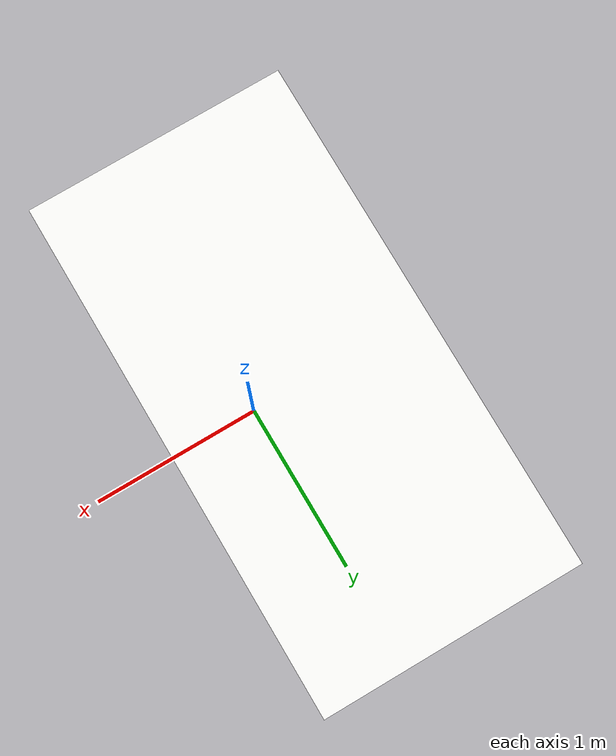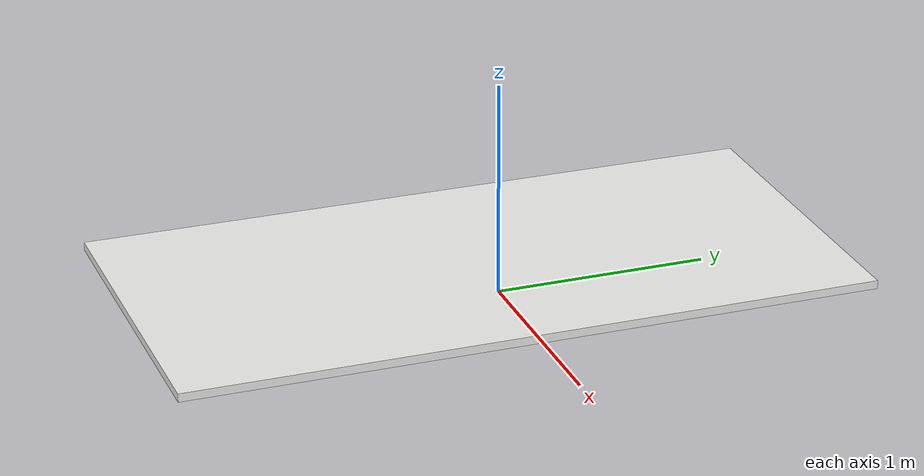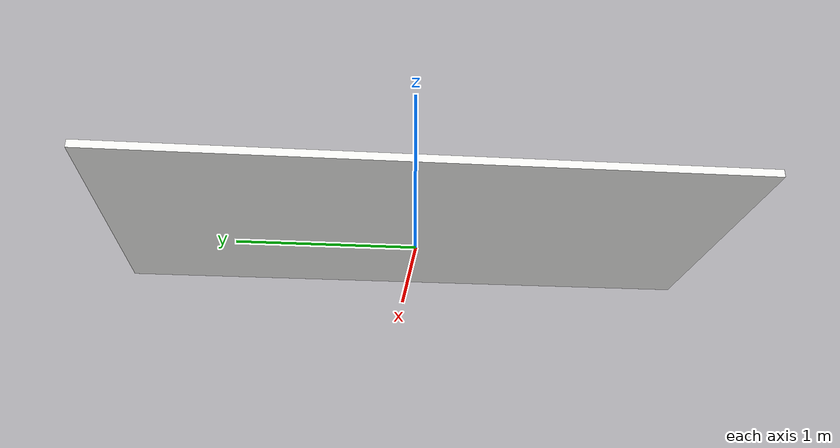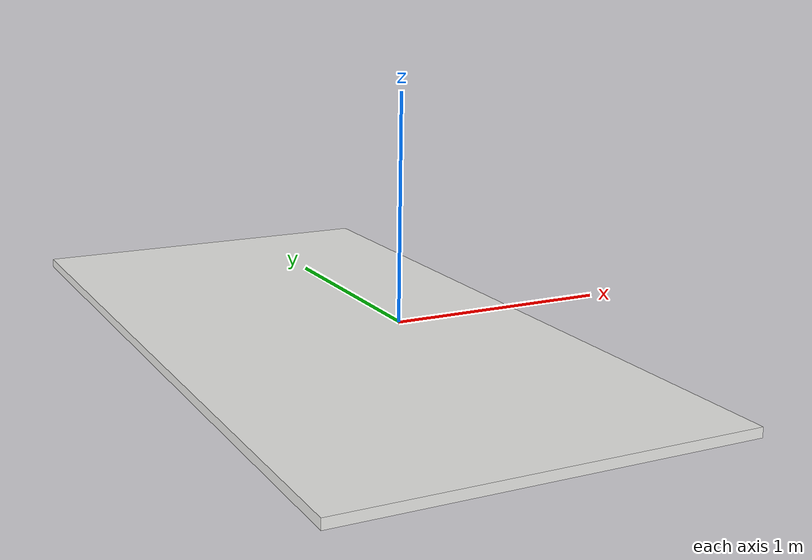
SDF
<?xml version='1.0'?>
<sdf version='1.6'>
  <model name='bottom'>
    <link name='arena::link_0'>
      <pose frame=''>0 0 0 0 -0 0</pose>
      <self_collide>0</self_collide>
      <enable_wind>0</enable_wind>
      <kinematic>0</kinematic>
      <gravity>1</gravity>
      <inertial>
        <mass>1</mass>
        <pose frame=''>0 0 0 0 -0 0</pose>
        <inertia>
          <ixx>1</ixx>
          <ixy>0</ixy>
          <ixz>0</ixz>
          <iyy>1</iyy>
          <iyz>0</iyz>
          <izz>1</izz>
        </inertia>
      </inertial>
      <visual name='visual'>
        <pose frame=''>0 0 0 0 -0 0</pose>
        <geometry>
          <mesh>
            <uri>model://bottom/meshes/bottom.dae</uri>
            <scale>0.54 0.54 1</scale>
          </mesh>
        </geometry>
        <transparency>0</transparency>
        <cast_shadows>1</cast_shadows>
        <material>
          <ambient>0.933 0.933 0.925 1</ambient>
          <shader type='vertex'>
            <normal_map>__default__</normal_map>
          </shader>
          <diffuse>0.933 0.933 0.925 1</diffuse>
          <specular>0.933 0.933 0.925 1</specular>
          <emissive>0.933 0.933 0.925 1</emissive>
        </material>
      </visual>
      <collision name="collision">
        <geometry>
          <mesh>
            <uri>model://bottom/meshes/bottom.dae</uri>
          </mesh>
        </geometry>
      </collision>
    </link>
    <static>1</static>
    <allow_auto_disable>1</allow_auto_disable>
  </model>
</sdf>
